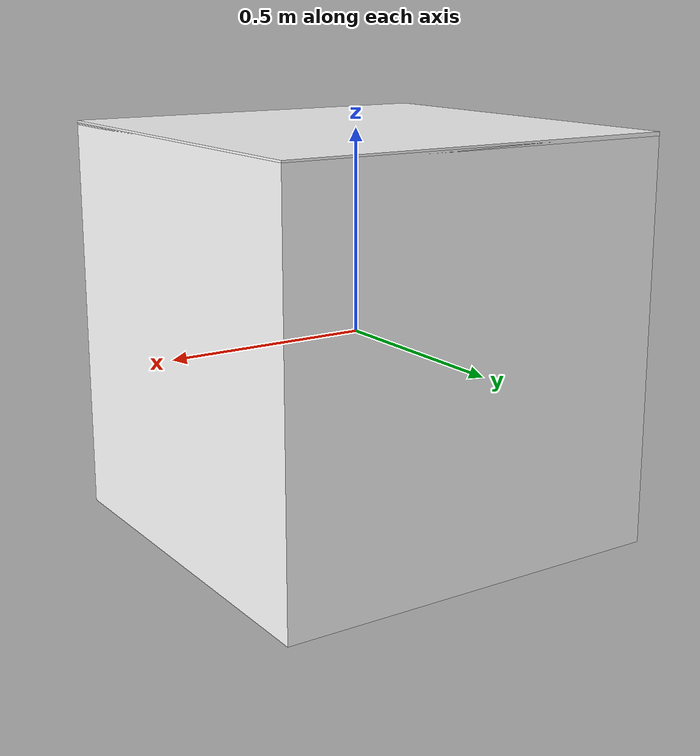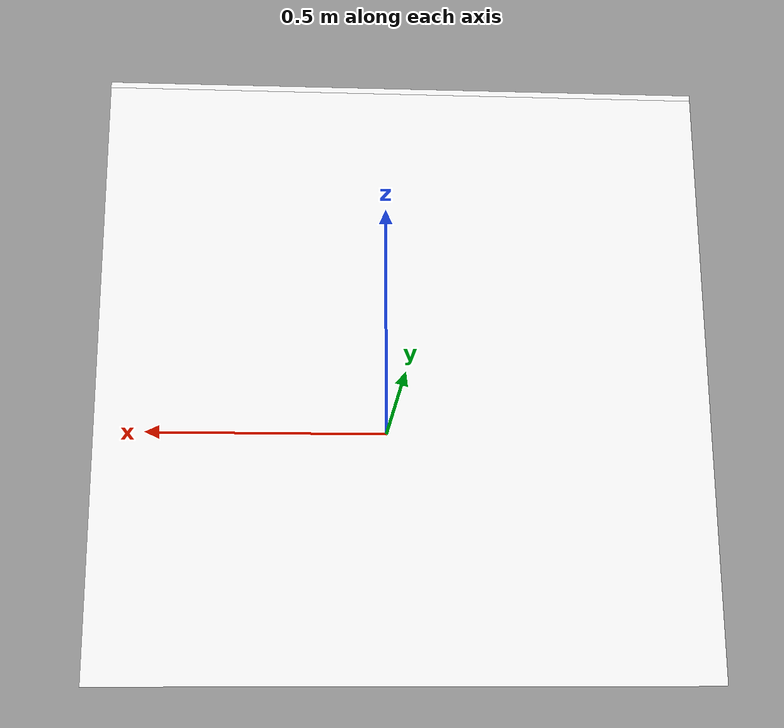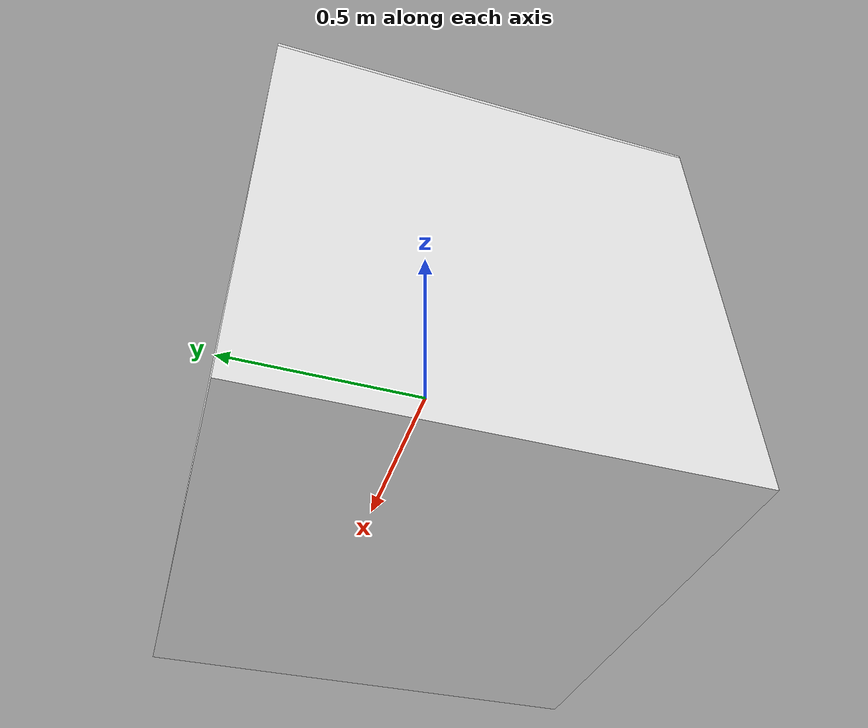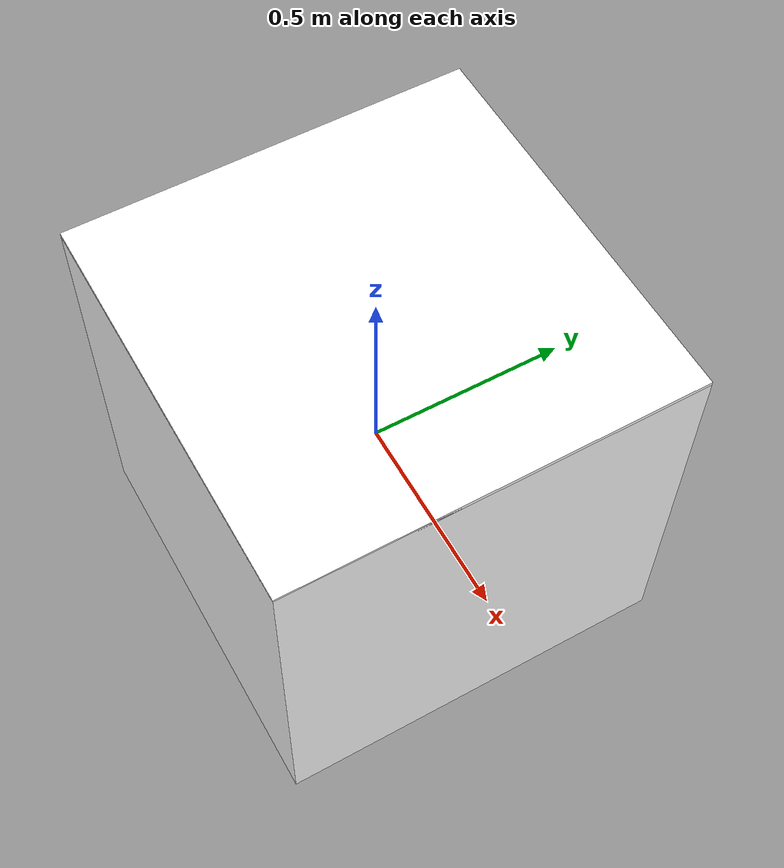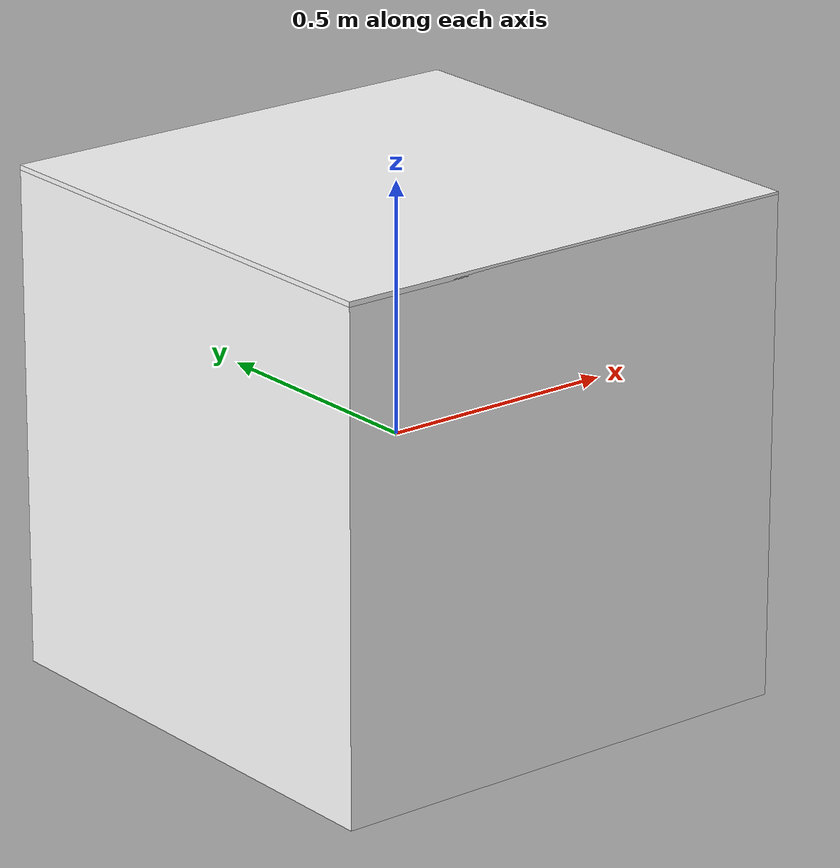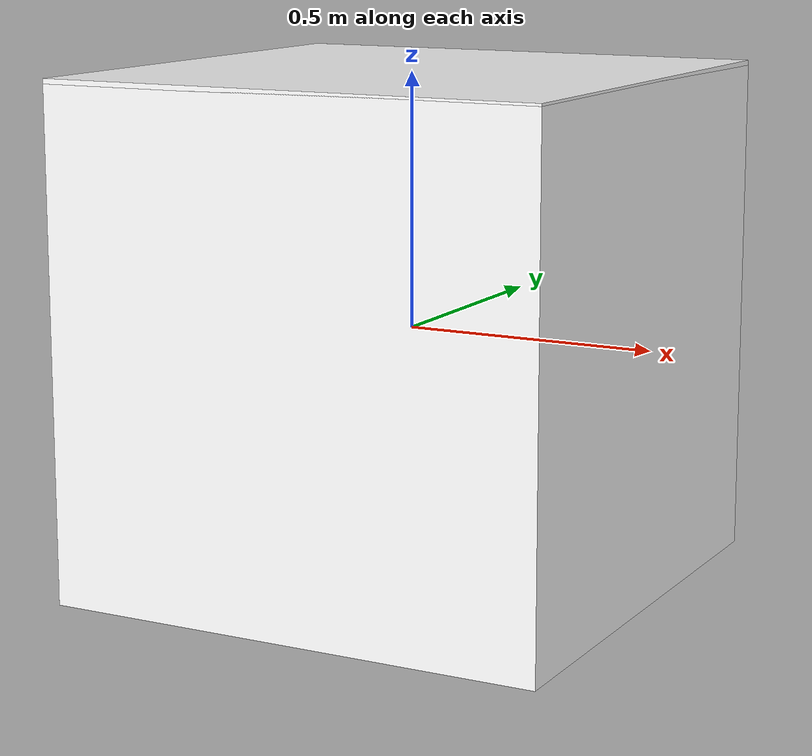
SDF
<?xml version="1.0"?>
<sdf version="1.4">
  <model name="box">
    <static>true</static>
    <link name="box_link">
      <velocity_decay>
        <linear>
            0.5
          </linear>
      </velocity_decay>

      <inertial>
        <mass>10</mass>
      </inertial>

      <!-- this is the bottom of the box -->
      <collision name="bottom_collision">
        <geometry>
          <box>
            <size>1 1 1</size>
          </box>
        </geometry>
      </collision>
      <visual name="bottom_visual">
        <geometry>
          <box>
            <size>1 1 1</size>
          </box>
        </geometry>
        <material>
          <ambient>1 1 1 1</ambient>
          <diffuse>1 1 1 1</diffuse>
        </material>
      </visual>

      <!-- this is the top of the box -->
      <collision name="box_collision">
        <pose>0 0 0.5 0 0 0</pose>
        <surface>
          <contact>
            <collide_without_contact>true</collide_without_contact>
          </contact>
          <friction>
            <bullet>
              <friction>1.0</friction>
              <friction2>1.0</friction2>
              <fdir1>0 0 0</fdir1>
              <rolling_friction>1.0</rolling_friction>
            </bullet>
          </friction>
        </surface>
        <geometry>
          <box>
            <size>1 1 0.01</size>
          </box>
        </geometry>
      </collision>
      <!-- https://classic.gazebosim.org/tutorials?tut=color_model -->
      <visual name="box_visual">
        <pose>0 0 0.5 0 0 0</pose>
        <geometry>
          <box>
            <size>1 1 0.01</size>
          </box>
        </geometry>
        <material>
          <!-- white box -->
          <ambient>1 1 1 1</ambient>
          <diffuse>1 1 1 1</diffuse>
          <!-- https://answers.ros.org/question/257694/questions-to-sdf-urdf-xacro-material-textures-using-gazebo/ -->
          <script>
            <uri>model://tabletop_aruco_test/materials/scripts</uri>
            <uri>model://tabletop_aruco_test/materials/textures</uri>
            <name>Grid/Simple</name>
          </script>
        </material>
      </visual>

      <sensor name='box_contact' type='contact'>
        <contact>
          <collision>box_collision</collision>
        </contact>
      </sensor>

    </link>
  </model>
</sdf>
